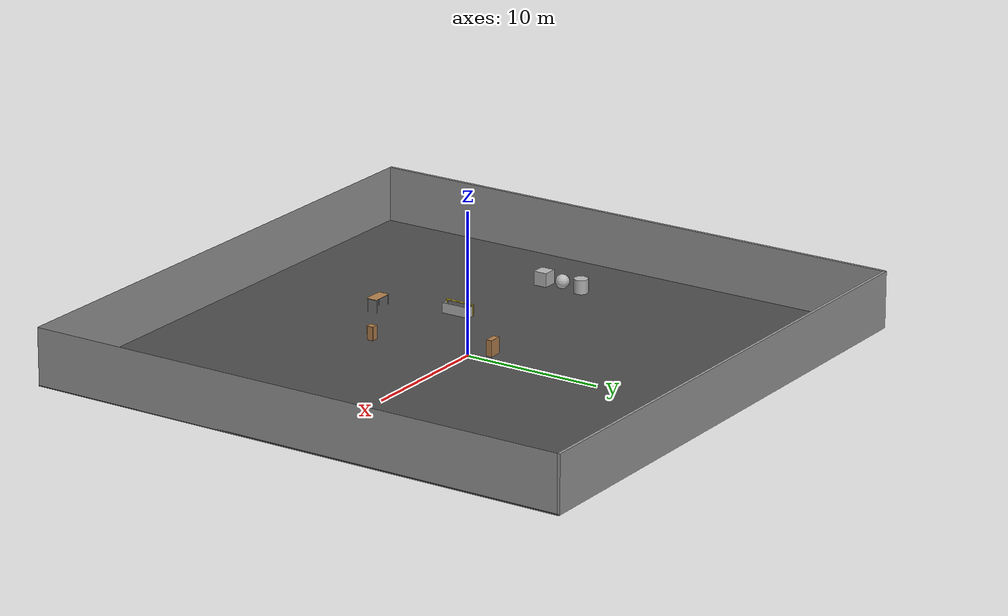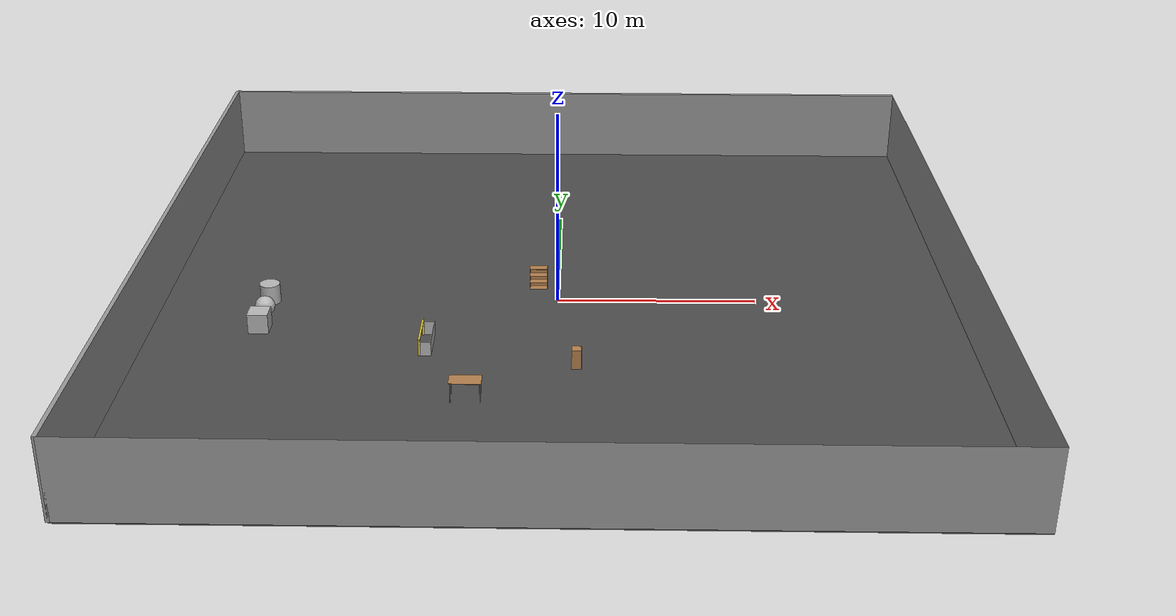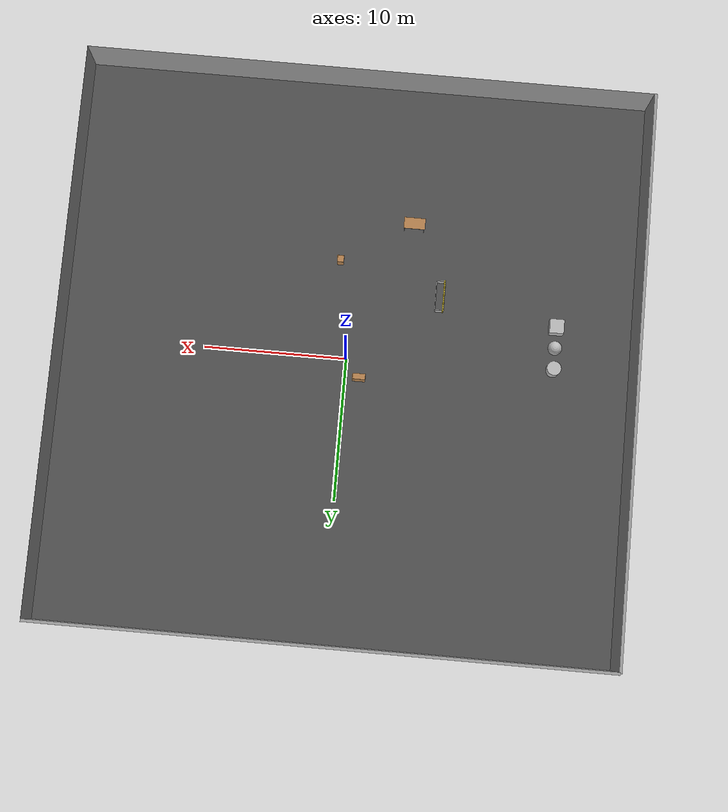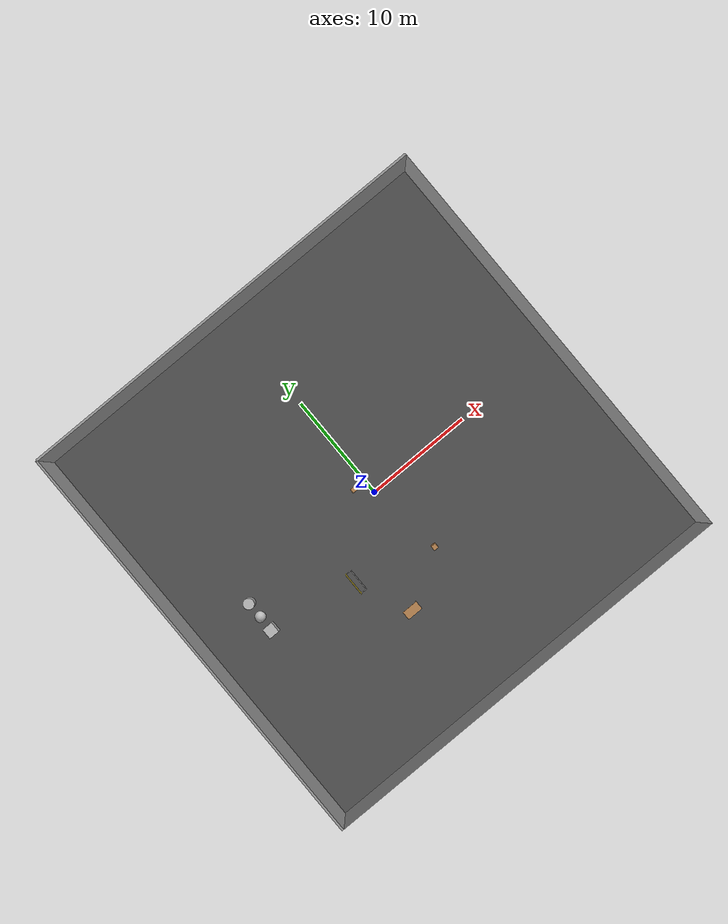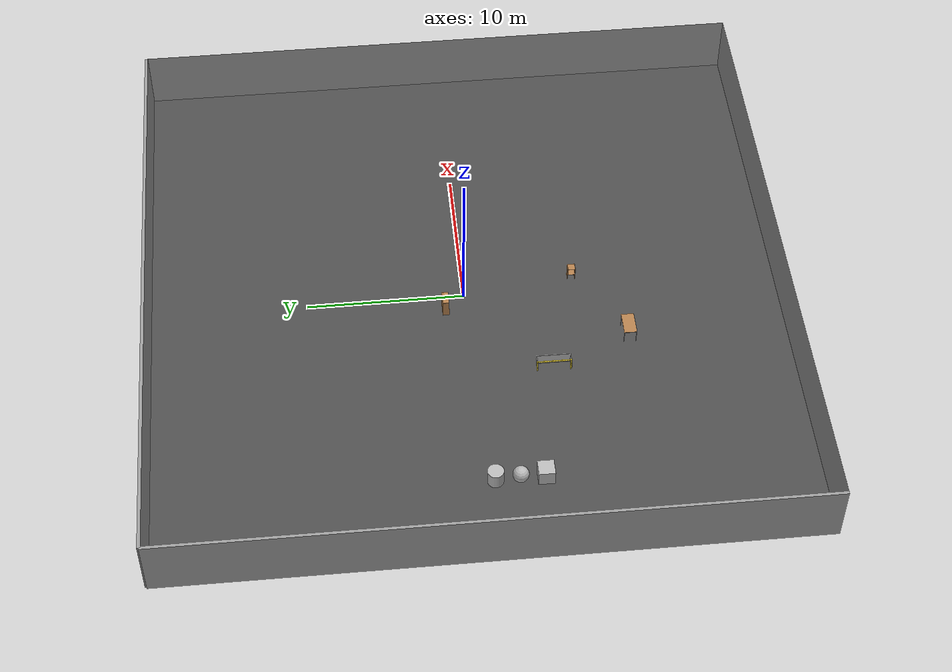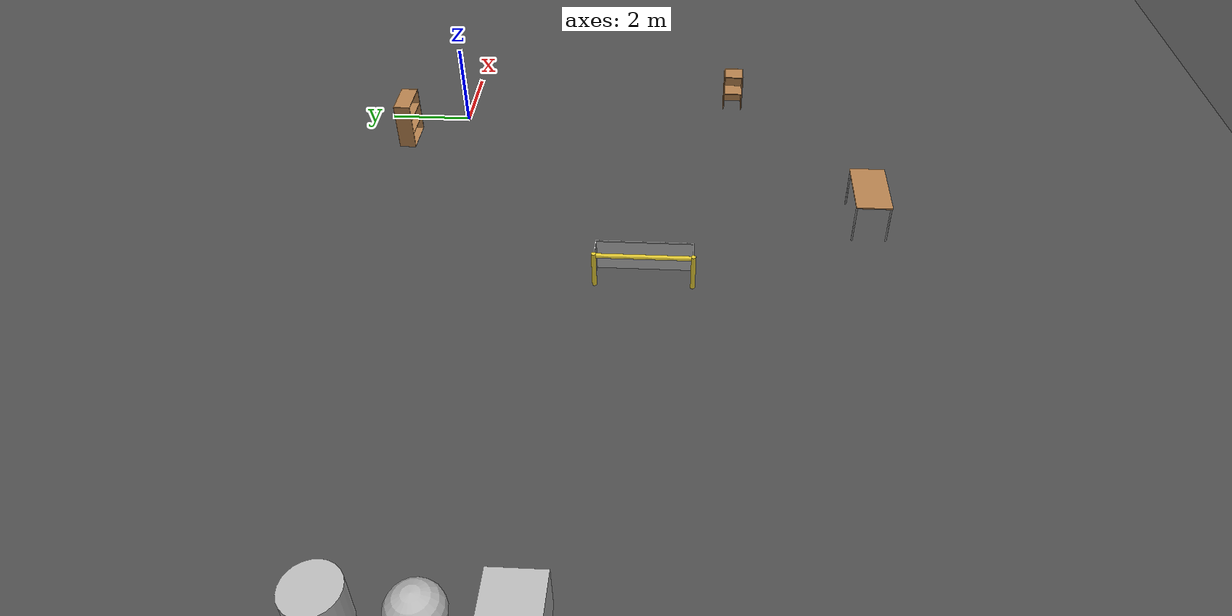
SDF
<sdf version="1.4">
 <world name="default">
  <light name="sun" type="directional">
   <pose>0 0 10 0 -0 0</pose>
   <diffuse>0.8 0.8 0.8 1</diffuse>
   <specular>0.2 0.2 0.2 1</specular>
   <attenuation>
    <range>1000</range>
    <constant>0.9</constant>
    <linear>0.01</linear>
    <quadratic>0.001</quadratic>
   </attenuation>
   <direction>-0.5 0.1 -0.9</direction>
  </light>
  <physics type="ode">
   <max_step_size>0.001</max_step_size>
   <real_time_factor>1</real_time_factor>
   <real_time_update_rate>1000</real_time_update_rate>
   <gravity>0 0 -9.8</gravity>
  </physics>
  <scene><ambient>0.4 0.4 0.4 1</ambient><background>0.7 0.7 0.7 1</background><shadows>1</shadows></scene>
  <model name="challenge_w1_0">
   <static>1</static>
   <link name="Wall_South">
    <collision name="Wall_South_Collision">
     <geometry><box><size>40 0 4</size></box></geometry>
     <pose>0 0 2 0 -0 0</pose>
    </collision>
    <visual name="Wall_South_Visual">
     <pose>0 0 2 0 -0 0</pose>
     <geometry><box><size>40 0 4</size></box></geometry>
     <material>
      <script><uri>file://media/materials/scripts/gazebo.material</uri><name>Gazebo/Grey</name></script>
     </material>
    </visual>
    <velocity_decay><linear>0</linear><angular>0</angular></velocity_decay>
    <pose>0 -20 0 0 -0 0</pose>
   </link>
   <link name="Wall_East">
    <collision name="Wall_21_Collision">
     <geometry><box><size>40 0 4</size></box></geometry>
     <pose>0 0 2 0 -0 0</pose>
    </collision>
    <visual name="Wall_21_Visual">
     <pose>0 0 2 0 -0 0</pose>
     <geometry><box><size>40 0 4</size></box></geometry>
     <material>
      <script><uri>file://media/materials/scripts/gazebo.material</uri><name>Gazebo/Grey</name></script>
     </material>
    </visual>
    <velocity_decay><linear>0</linear><angular>0</angular></velocity_decay>
    <pose>20 0 0 0 -0 1.5708</pose>
   </link>
   <link name="Wall_North">
    <collision name="Wall_22_Collision">
     <geometry><box><size>40 0.2 4</size></box></geometry>
     <pose>0 0 2 0 -0 0</pose>
    </collision>
    <visual name="Wall_22_Visual">
     <pose>0 0 2 0 -0 0</pose>
     <geometry><box><size>40 0.2 4</size></box></geometry>
     <material>
      <script><uri>file://media/materials/scripts/gazebo.material</uri><name>Gazebo/Grey</name></script>
     </material>
    </visual>
    <velocity_decay><linear>0</linear><angular>0</angular></velocity_decay>
    <pose>0 20 0 0 -0 0</pose>
   </link>
   <link name="Wall_West">
    <collision name="Wall_23_Collision">
     <geometry><box><size>40 0.2 4</size></box></geometry>
     <pose>0 0 2 0 -0 0</pose>
    </collision>
    <visual name="Wall_23_Visual">
     <pose>0 0 2 0 -0 0</pose>
     <geometry><box><size>40 0.2 4</size></box></geometry>
     <material>
      <script><uri>file://media/materials/scripts/gazebo.material</uri><name>Gazebo/Grey</name></script>
     </material>
    </visual>
    <velocity_decay><linear>0</linear><angular>0</angular></velocity_decay>
    <pose>-20 0 0 0 0 -1.5708</pose>
   </link>
   <static>1</static>
  </model>
  <model name="asphalt_plane">
   <static>1</static>
   <link name="link">
    <collision name="collision"><geometry><box><size>40 40 0.1</size></box></geometry></collision>
    <visual name="visual">
     <cast_shadows>0</cast_shadows>
     <geometry><box><size>40 40 0.1</size></box></geometry>
     <material>
      <script>
       <uri>model://asphalt_plane/materials/scripts</uri>
       <uri>model://asphalt_plane/materials/textures</uri>
       <name>vrc/asphalt</name>
      </script>
     </material>
    </visual>
    <velocity_decay><linear>0</linear><angular>0</angular></velocity_decay>
   </link>
  </model>
  <spherical_coordinates>
   <surface_model>EARTH_WGS84</surface_model>
   <latitude_deg>0</latitude_deg>
   <longitude_deg>0</longitude_deg>
   <elevation>0</elevation>
   <heading_deg>0</heading_deg>
  </spherical_coordinates>
  <model name="cabinet">
   <static>1</static>
   <link name="cabinet_bottom_plate">
    <inertial>
     <pose>0 0 -1 0 -0 0</pose>
     <inertia><ixx>2.05</ixx><ixy>0</ixy><ixz>0</ixz><iyy>2.05</iyy><iyz>0</iyz><izz>2.05</izz></inertia>
     <mass>25</mass>
    </inertial>
    <collision name="cabinet_bottom_plate_geom">
     <pose>0 0 0.01 0 -0 0</pose>
     <geometry><box><size>0.45 0.45 0.02</size></box></geometry>
    </collision>
    <visual name="cabinet_bottom_plate_geom_visual">
     <pose>0 0 0.01 0 -0 0</pose>
     <geometry><box><size>0.45 0.45 0.02</size></box></geometry>
     <material>
      <script><uri>file://media/materials/scripts/gazebo.material</uri><name>Gazebo/Wood</name></script>
     </material>
    </visual>
    <collision name="cabinet_bottom_plate_geom_cabinet_back_plate">
     <pose>0.235 0 0.51 0 -0 0</pose>
     <geometry><box><size>0.02 0.45 1.02</size></box></geometry>
    </collision>
    <visual name="cabinet_bottom_plate_geom_cabinet_back_plate_visual">
     <pose>0.235 0 0.51 0 -0 0</pose>
     <geometry><box><size>0.02 0.45 1.02</size></box></geometry>
     <material>
      <script><uri>file://media/materials/scripts/gazebo.material</uri><name>Gazebo/Wood</name></script>
     </material>
    </visual>
    <collision name="cabinet_bottom_plate_geom_cabinet_left_plate">
     <pose>0 0.235 0.51 0 -0 0</pose>
     <geometry><box><size>0.45 0.02 1.02</size></box></geometry>
    </collision>
    <visual name="cabinet_bottom_plate_geom_cabinet_left_plate_visual">
     <pose>0 0.235 0.51 0 -0 0</pose>
     <geometry><box><size>0.45 0.02 1.02</size></box></geometry>
     <material>
      <script><uri>file://media/materials/scripts/gazebo.material</uri><name>Gazebo/Wood</name></script>
     </material>
    </visual>
    <collision name="cabinet_bottom_plate_geom_cabinet_middle_plate">
     <pose>0 0 0.51 0 -0 0</pose>
     <geometry><box><size>0.45 0.45 0.02</size></box></geometry>
    </collision>
    <visual name="cabinet_bottom_plate_geom_cabinet_middle_plate_visual">
     <pose>0 0 0.51 0 -0 0</pose>
     <geometry><box><size>0.45 0.45 0.02</size></box></geometry>
     <material>
      <script><uri>file://media/materials/scripts/gazebo.material</uri><name>Gazebo/Wood</name></script>
     </material>
    </visual>
    <collision name="cabinet_bottom_plate_geom_cabinet_right_plate">
     <pose>0 -0.235 0.51 0 -0 0</pose>
     <geometry><box><size>0.45 0.02 1.02</size></box></geometry>
    </collision>
    <visual name="cabinet_bottom_plate_geom_cabinet_right_plate_visual">
     <pose>0 -0.235 0.51 0 -0 0</pose>
     <geometry><box><size>0.45 0.02 1.02</size></box></geometry>
     <material>
      <script><uri>file://media/materials/scripts/gazebo.material</uri><name>Gazebo/Wood</name></script>
     </material>
    </visual>
    <collision name="cabinet_bottom_plate_geom_cabinet_top_plate">
     <pose>0 0 1.01 0 -0 0</pose>
     <geometry><box><size>0.45 0.45 0.02</size></box></geometry>
    </collision>
    <visual name="cabinet_bottom_plate_geom_cabinet_top_plate_visual">
     <pose>0 0 1.01 0 -0 0</pose>
     <geometry><box><size>0.45 0.45 0.02</size></box></geometry>
     <material>
      <script><uri>file://media/materials/scripts/gazebo.material</uri><name>Gazebo/Wood</name></script>
     </material>
    </visual>
    <velocity_decay><linear>0</linear><angular>0</angular></velocity_decay>
   </link>
   <pose>1 -7 0 0 -0 0</pose>
  </model>
  <model name="bookshelf">
   <static>1</static>
   <link name="link">
    <inertial><mass>1</mass></inertial>
    <collision name="back">
     <pose>0 0.005 0.6 0 -0 0</pose>
     <geometry><box><size>0.9 0.01 1.2</size></box></geometry>
    </collision>
    <visual name="visual1">
     <pose>0 0.005 0.6 0 -0 0</pose>
     <geometry><box><size>0.9 0.01 1.2</size></box></geometry>
     <material>
      <script><uri>file://media/materials/scripts/gazebo.material</uri><name>Gazebo/Wood</name></script>
     </material>
    </visual>
    <collision name="left_side">
     <pose>0.45 -0.195 0.6 0 -0 0</pose>
     <geometry><box><size>0.02 0.4 1.2</size></box></geometry>
    </collision>
    <visual name="visual2">
     <pose>0.45 -0.195 0.6 0 -0 0</pose>
     <geometry><box><size>0.02 0.4 1.2</size></box></geometry>
     <material>
      <script><uri>file://media/materials/scripts/gazebo.material</uri><name>Gazebo/Wood</name></script>
     </material>
    </visual>
    <collision name="right_side">
     <pose>-0.45 -0.195 0.6 0 -0 0</pose>
     <geometry><box><size>0.02 0.4 1.2</size></box></geometry>
    </collision>
    <visual name="visual3">
     <pose>-0.45 -0.195 0.6 0 -0 0</pose>
     <geometry><box><size>0.02 0.4 1.2</size></box></geometry>
     <material>
      <script><uri>file://media/materials/scripts/gazebo.material</uri><name>Gazebo/Wood</name></script>
     </material>
    </visual>
    <collision name="bottom">
     <pose>0 -0.195 0.03 0 -0 0</pose>
     <geometry><box><size>0.88 0.4 0.06</size></box></geometry>
    </collision>
    <visual name="visual4">
     <pose>0 -0.195 0.03 0 -0 0</pose>
     <geometry><box><size>0.88 0.4 0.06</size></box></geometry>
     <material>
      <script><uri>file://media/materials/scripts/gazebo.material</uri><name>Gazebo/Wood</name></script>
     </material>
    </visual>
    <collision name="top">
     <pose>0 -0.195 1.19 0 -0 0</pose>
     <geometry><box><size>0.88 0.4 0.02</size></box></geometry>
    </collision>
    <visual name="visual5">
     <pose>0 -0.195 1.19 0 -0 0</pose>
     <geometry><box><size>0.88 0.4 0.02</size></box></geometry>
     <material>
      <script><uri>file://media/materials/scripts/gazebo.material</uri><name>Gazebo/Wood</name></script>
     </material>
    </visual>
    <collision name="low_shelf">
     <pose>0 -0.195 0.43 0 -0 0</pose>
     <geometry><box><size>0.88 0.4 0.02</size></box></geometry>
    </collision>
    <visual name="visual6">
     <pose>0 -0.195 0.43 0 -0 0</pose>
     <geometry><box><size>0.88 0.4 0.02</size></box></geometry>
     <material>
      <script><uri>file://media/materials/scripts/gazebo.material</uri><name>Gazebo/Wood</name></script>
     </material>
    </visual>
    <collision name="high_shelf">
     <pose>0 -0.195 0.8 0 -0 0</pose>
     <geometry><box><size>0.88 0.4 0.02</size></box></geometry>
    </collision>
    <visual name="visual7">
     <pose>0 -0.195 0.8 0 -0 0</pose>
     <geometry><box><size>0.88 0.4 0.02</size></box></geometry>
     <material>
      <script><uri>file://media/materials/scripts/gazebo.material</uri><name>Gazebo/Wood</name></script>
     </material>
    </visual>
    <velocity_decay><linear>0</linear><angular>0</angular></velocity_decay>
   </link>
   <pose>-1 1.48585 0 0 -0 0</pose>
  </model>
  <model name="robocup_3d_goal">
   <static>1</static>
   <link name="left_post">
    <pose>0 1.05 0.45 0 -0 0</pose>
    <collision name="collision">
     <geometry><cylinder><radius>0.05</radius><length>0.9</length></cylinder></geometry>
    </collision>
    <visual name="visual">
     <geometry><cylinder><radius>0.05</radius><length>0.9</length></cylinder></geometry>
     <material>
      <script><uri>file://media/materials/scripts/gazebo.material</uri><name>Gazebo/ZincYellow</name></script>
     </material>
    </visual>
    <velocity_decay><linear>0</linear><angular>0</angular></velocity_decay>
   </link>
   <link name="left_support_horiz_lower">
    <pose>0.3 1.05 0.01 0 -0 0</pose>
    <collision name="collision"><geometry><box><size>0.5 0.02 0.02</size></box></geometry></collision>
    <visual name="visual">
     <geometry><box><size>0.5 0.02 0.02</size></box></geometry>
     <material>
      <script><uri>file://media/materials/scripts/gazebo.material</uri><name>Gazebo/White</name></script>
     </material>
    </visual>
    <velocity_decay><linear>0</linear><angular>0</angular></velocity_decay>
   </link>
   <link name="left_support_horiz_upper">
    <pose>0.3 1.05 0.79 0 -0 0</pose>
    <collision name="collision"><geometry><box><size>0.5 0.02 0.02</size></box></geometry></collision>
    <visual name="visual">
     <geometry><box><size>0.5 0.02 0.02</size></box></geometry>
     <material>
      <script><uri>file://media/materials/scripts/gazebo.material</uri><name>Gazebo/White</name></script>
     </material>
    </visual>
    <velocity_decay><linear>0</linear><angular>0</angular></velocity_decay>
   </link>
   <link name="left_support_vertical">
    <pose>0.56 1.05 0.4 3.14159 1.57079 3.14159</pose>
    <collision name="collision"><geometry><box><size>0.8 0.02 0.02</size></box></geometry></collision>
    <visual name="visual">
     <geometry><box><size>0.8 0.02 0.02</size></box></geometry>
     <material>
      <script><uri>file://media/materials/scripts/gazebo.material</uri><name>Gazebo/White</name></script>
     </material>
    </visual>
    <velocity_decay><linear>0</linear><angular>0</angular></velocity_decay>
   </link>
   <link name="right_support_horiz_lower">
    <pose>0.3 -1.05 0.01 0 -0 0</pose>
    <collision name="collision"><geometry><box><size>0.5 0.02 0.02</size></box></geometry></collision>
    <visual name="visual">
     <geometry><box><size>0.5 0.02 0.02</size></box></geometry>
     <material>
      <script><uri>file://media/materials/scripts/gazebo.material</uri><name>Gazebo/White</name></script>
     </material>
    </visual>
    <velocity_decay><linear>0</linear><angular>0</angular></velocity_decay>
   </link>
   <link name="right_support_horiz_upper">
    <pose>0.3 -1.05 0.79 0 -0 0</pose>
    <collision name="collision"><geometry><box><size>0.5 0.02 0.02</size></box></geometry></collision>
    <visual name="visual">
     <geometry><box><size>0.5 0.02 0.02</size></box></geometry>
     <material>
      <script><uri>file://media/materials/scripts/gazebo.material</uri><name>Gazebo/White</name></script>
     </material>
    </visual>
    <velocity_decay><linear>0</linear><angular>0</angular></velocity_decay>
   </link>
   <link name="right_support_vertical">
    <pose>0.56 -1.05 0.4 3.14159 1.57079 3.14159</pose>
    <collision name="collision"><geometry><box><size>0.8 0.02 0.02</size></box></geometry></collision>
    <visual name="visual">
     <geometry><box><size>0.8 0.02 0.02</size></box></geometry>
     <material>
      <script><uri>file://media/materials/scripts/gazebo.material</uri><name>Gazebo/White</name></script>
     </material>
    </visual>
    <velocity_decay><linear>0</linear><angular>0</angular></velocity_decay>
   </link>
   <link name="center_support_horiz_lower">
    <pose>0.56 0 0.01 3.14159 1.57079 3.14159</pose>
    <collision name="collision"><geometry><box><size>0.02 2.08 0.02</size></box></geometry></collision>
    <visual name="visual">
     <geometry><box><size>0.02 2.08 0.02</size></box></geometry>
     <material>
      <script><uri>file://media/materials/scripts/gazebo.material</uri><name>Gazebo/White</name></script>
     </material>
    </visual>
    <velocity_decay><linear>0</linear><angular>0</angular></velocity_decay>
   </link>
   <link name="center_support_horiz_upper">
    <pose>0.56 0 0.79 3.14159 1.57079 3.14159</pose>
    <collision name="collision"><geometry><box><size>0.02 2.08 0.02</size></box></geometry></collision>
    <visual name="visual">
     <geometry><box><size>0.02 2.08 0.02</size></box></geometry>
     <material>
      <script><uri>file://media/materials/scripts/gazebo.material</uri><name>Gazebo/White</name></script>
     </material>
    </visual>
    <velocity_decay><linear>0</linear><angular>0</angular></velocity_decay>
   </link>
   <link name="right_post">
    <pose>0 -1.05 0.45 0 -0 0</pose>
    <collision name="collision">
     <geometry><cylinder><radius>0.05</radius><length>0.9</length></cylinder></geometry>
    </collision>
    <visual name="visual">
     <geometry><cylinder><radius>0.05</radius><length>0.9</length></cylinder></geometry>
     <material>
      <script><uri>file://media/materials/scripts/gazebo.material</uri><name>Gazebo/ZincYellow</name></script>
     </material>
    </visual>
    <velocity_decay><linear>0</linear><angular>0</angular></velocity_decay>
   </link>
   <link name="crossbar">
    <pose>0 0 0.85 1.57 1.57 1.39418e-13</pose>
    <collision name="collision">
     <geometry><cylinder><radius>0.05</radius><length>2</length></cylinder></geometry>
    </collision>
    <visual name="visual">
     <geometry><cylinder><radius>0.05</radius><length>2</length></cylinder></geometry>
     <material>
      <script><uri>file://media/materials/scripts/gazebo.material</uri><name>Gazebo/ZincYellow</name></script>
     </material>
    </visual>
    <velocity_decay><linear>0</linear><angular>0</angular></velocity_decay>
   </link>
   <link name="center_net">
    <pose>0.56 0 0.4 0 -0 0</pose>
    <collision name="collision"><geometry><box><size>0.01 2.1 0.8</size></box></geometry></collision>
    <visual name="visual">
     <geometry><box><size>0.01 2.1 0.8</size></box></geometry>
     <material>
      <script>
       <uri>model://robocup09_spl_field/materials/scripts/</uri>
       <uri>model://robocup09_spl_field/materials/textures/</uri>
       <name>RoboCup/Net</name>
      </script>
     </material>
    </visual>
    <velocity_decay><linear>0</linear><angular>0</angular></velocity_decay>
   </link>
   <link name="left_net">
    <pose>0.3 1.05 0.4 0 -0 0</pose>
    <collision name="collision"><geometry><box><size>0.5 0.01 0.76</size></box></geometry></collision>
    <visual name="visual">
     <geometry><box><size>0.5 0.01 0.76</size></box></geometry>
     <material>
      <script>
       <uri>model://robocup09_spl_field/materials/scripts/</uri>
       <uri>model://robocup09_spl_field/materials/textures/</uri>
       <name>RoboCup/Net</name>
      </script>
     </material>
    </visual>
    <velocity_decay><linear>0</linear><angular>0</angular></velocity_decay>
   </link>
   <link name="right_net">
    <pose>0.3 -1.05 0.4 0 -0 0</pose>
    <collision name="collision"><geometry><box><size>0.5 0.01 0.76</size></box></geometry></collision>
    <visual name="visual">
     <geometry><box><size>0.5 0.01 0.76</size></box></geometry>
     <material>
      <script>
       <uri>model://robocup09_spl_field/materials/scripts/</uri>
       <uri>model://robocup09_spl_field/materials/textures/</uri>
       <name>RoboCup/Net</name>
      </script>
     </material>
    </visual>
    <velocity_decay><linear>0</linear><angular>0</angular></velocity_decay>
   </link>
   <pose>-6.48111 -5 0 0 -0 0</pose>
  </model>
  <model name="table">
   <static>1</static>
   <link name="link">
    <collision name="surface">
     <pose>0 0 1 0 -0 0</pose>
     <geometry><box><size>1.5 0.8 0.03</size></box></geometry>
     <surface><friction><ode><mu>0.6</mu><mu2>0.6</mu2></ode></friction></surface>
    </collision>
    <visual name="visual1">
     <pose>0 0 1 0 -0 0</pose>
     <geometry><box><size>1.5 0.8 0.03</size></box></geometry>
     <material>
      <script><uri>file://media/materials/scripts/gazebo.material</uri><name>Gazebo/Wood</name></script>
     </material>
    </visual>
    <collision name="front_left_leg">
     <pose>0.68 0.38 0.5 0 -0 0</pose>
     <geometry><cylinder><radius>0.02</radius><length>1</length></cylinder></geometry>
    </collision>
    <visual name="front_left_leg">
     <pose>0.68 0.38 0.5 0 -0 0</pose>
     <geometry><cylinder><radius>0.02</radius><length>1</length></cylinder></geometry>
     <material>
      <script><uri>file://media/materials/scripts/gazebo.material</uri><name>Gazebo/Grey</name></script>
     </material>
    </visual>
    <collision name="front_right_leg">
     <pose>0.68 -0.38 0.5 0 -0 0</pose>
     <geometry><cylinder><radius>0.02</radius><length>1</length></cylinder></geometry>
    </collision>
    <visual name="front_right_leg">
     <pose>0.68 -0.38 0.5 0 -0 0</pose>
     <geometry><cylinder><radius>0.02</radius><length>1</length></cylinder></geometry>
     <material>
      <script><uri>file://media/materials/scripts/gazebo.material</uri><name>Gazebo/Grey</name></script>
     </material>
    </visual>
    <collision name="back_right_leg">
     <pose>-0.68 -0.38 0.5 0 -0 0</pose>
     <geometry><cylinder><radius>0.02</radius><length>1</length></cylinder></geometry>
    </collision>
    <visual name="back_right_leg">
     <pose>-0.68 -0.38 0.5 0 -0 0</pose>
     <geometry><cylinder><radius>0.02</radius><length>1</length></cylinder></geometry>
     <material>
      <script><uri>file://media/materials/scripts/gazebo.material</uri><name>Gazebo/Grey</name></script>
     </material>
    </visual>
    <collision name="back_left_leg">
     <pose>-0.68 0.38 0.5 0 -0 0</pose>
     <geometry><cylinder><radius>0.02</radius><length>1</length></cylinder></geometry>
    </collision>
    <visual name="back_left_leg">
     <pose>-0.68 0.38 0.5 0 -0 0</pose>
     <geometry><cylinder><radius>0.02</radius><length>1</length></cylinder></geometry>
     <material>
      <script><uri>file://media/materials/scripts/gazebo.material</uri><name>Gazebo/Grey</name></script>
     </material>
    </visual>
    <velocity_decay><linear>0</linear><angular>0</angular></velocity_decay>
   </link>
   <pose>-4 -10 0 0 -0 0</pose>
  </model>
  <model name="textured_shapes">
   <pose>-14.5506 -2 0.55 0 -0 0</pose>
   <link name="box">
    <pose>0 -1.5 0 0 -0 0</pose>
    <collision name="collision"><geometry><box><size>1 1 1</size></box></geometry></collision>
    <visual name="visual">
     <geometry><box><size>1 1 1</size></box></geometry>
     <material>
      <script>
       <uri>model://textured_shapes/materials/scripts</uri>
       <uri>model://textured_shapes/materials/textures</uri>
       <name>TexturedShape/Squares</name>
      </script>
     </material>
    </visual>
    <velocity_decay><linear>0</linear><angular>0</angular></velocity_decay>
    <inertial>
     <inertia><ixx>1</ixx><ixy>0</ixy><ixz>0</ixz><iyy>1</iyy><iyz>0</iyz><izz>1</izz></inertia>
     <mass>1</mass>
    </inertial>
   </link>
   <link name="sphere">
    <collision name="collision"><geometry><sphere><radius>0.5</radius></sphere></geometry></collision>
    <visual name="visual">
     <geometry><sphere><radius>0.5</radius></sphere></geometry>
     <material>
      <script>
       <uri>model://textured_shapes/materials/scripts</uri>
       <uri>model://textured_shapes/materials/textures</uri>
       <name>TexturedShape/Squares</name>
      </script>
     </material>
    </visual>
    <velocity_decay><linear>0</linear><angular>0</angular></velocity_decay>
    <inertial>
     <inertia><ixx>1</ixx><ixy>0</ixy><ixz>0</ixz><iyy>1</iyy><iyz>0</iyz><izz>1</izz></inertia>
     <mass>1</mass>
    </inertial>
   </link>
   <link name="cylinder">
    <pose>0 1.5 0 0 -0 0</pose>
    <collision name="collision">
     <geometry><cylinder><radius>0.5</radius><length>1</length></cylinder></geometry>
    </collision>
    <visual name="visual">
     <geometry><cylinder><radius>0.5</radius><length>1</length></cylinder></geometry>
     <material>
      <script>
       <uri>model://textured_shapes/materials/scripts</uri>
       <uri>model://textured_shapes/materials/textures</uri>
       <name>TexturedShape/Squares</name>
      </script>
     </material>
    </visual>
    <velocity_decay><linear>0</linear><angular>0</angular></velocity_decay>
    <inertial>
     <inertia><ixx>1</ixx><ixy>0</ixy><ixz>0</ixz><iyy>1</iyy><iyz>0</iyz><izz>1</izz></inertia>
     <mass>1</mass>
    </inertial>
   </link>
   <static>0</static>
  </model>
 </world>
</sdf>
